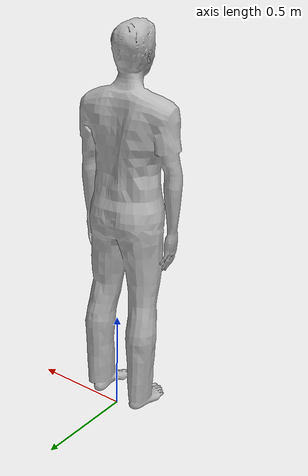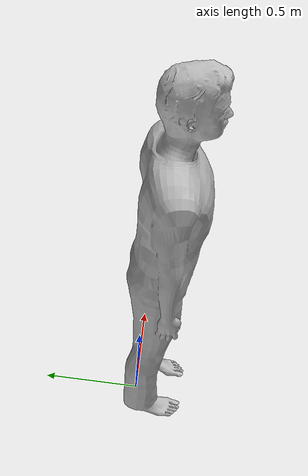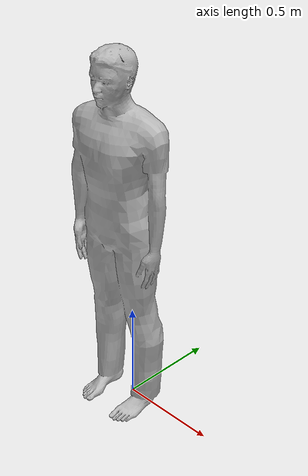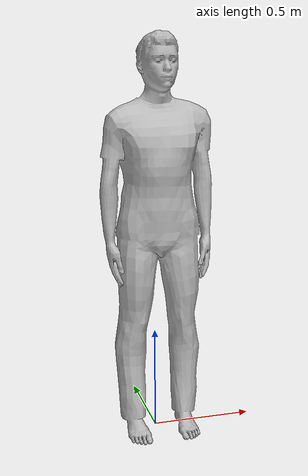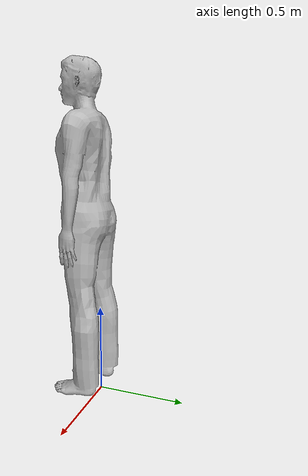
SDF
<?xml version="1.0" ?>
<sdf version="1.5">
  <model name="team_organizers_s">
    <link name="link">
      <inertial>
        <pose>0 -0.1 0.95 0 0 0</pose>
        <mass>80.0</mass>
        <inertia>
          <ixx>24.88</ixx>
          <ixy>0</ixy>
          <ixz>0</ixz>
          <iyy>25.73</iyy>
          <iyz>0</iyz>
          <izz>2.48</izz>
        </inertia>
      </inertial>

      <collision name="bottom">
        <pose>0 -0.1 0.01 0 0 0</pose>
        <geometry>
          <box>
            <size>0.5 0.35 0.02</size>
          </box>
        </geometry>
      </collision>

      <collision name="person">
        <pose>0 0 0.02 0.04 0 0</pose>
        <geometry>
          <mesh>
            <uri>model://p_organizing_s/meshes/standing.dae</uri>
          </mesh>
        </geometry>
      </collision>

      <visual name="visual">
        <pose>0 0 0.02 0.04 0 0</pose>
        <geometry>
          <mesh>
            <uri>model://p_organizing_s/meshes/standing.dae</uri>
          </mesh>
        </geometry>
      </visual>
    </link>
    <static>1</static>
    <allow_auto_disable>1</allow_auto_disable>

  </model>
</sdf>
